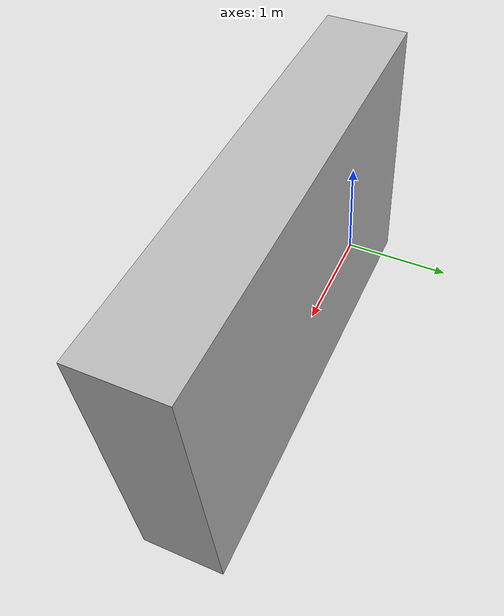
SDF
<?xml version="1.0"?>
<sdf version="1.6">
  <model name="test">
    <static>true</static>

    <link name="main_link">

      <visual name="visual_locker_body">
        <geometry>
          <mesh><uri>model://test/meshes/locker.dae</uri></mesh>
        </geometry>
        <material>
          <script>
            <uri>model://test/materials/scripts/locker.material</uri>
            <name>MyModel/DullBody</name>
          </script>
        </material>
      </visual>

      <visual name="visual_keypad">
        <geometry>
          <mesh><uri>model://test/meshes/keypad.dae</uri></mesh>
        </geometry>
        <material>
          <script>
            <uri>model://test/materials/scripts/part.material</uri>
            <name>MyModel/Parts</name>
          </script>
        </material>
      </visual>

      <visual name="visual_nametag">
        <geometry>
          <mesh><uri>model://test/meshes/nametag.dae</uri></mesh>
        </geometry>
        <material>
          <script>
            <uri>model://test/materials/scripts/part.material</uri>
            <name>MyModel/Parts</name>
          </script>
        </material>
      </visual>

      <collision name="collision">
        <geometry>
          <mesh><uri>model://test/meshes/locker.dae</uri></mesh>
        </geometry>
      </collision>

    </link>
  </model>
</sdf>
